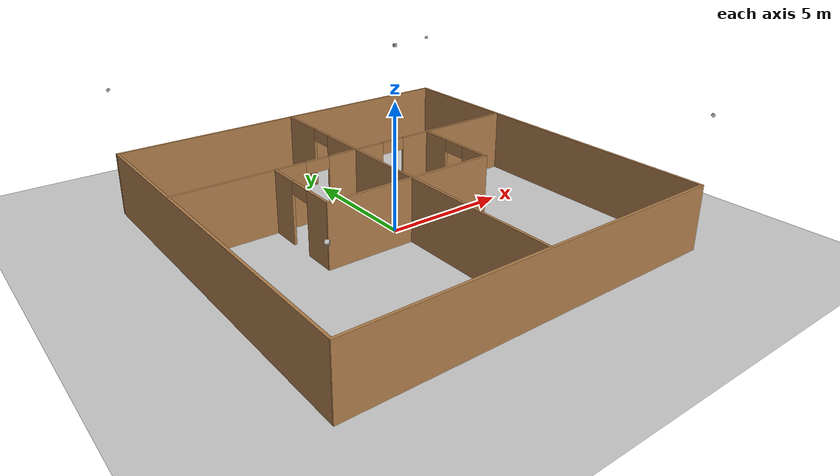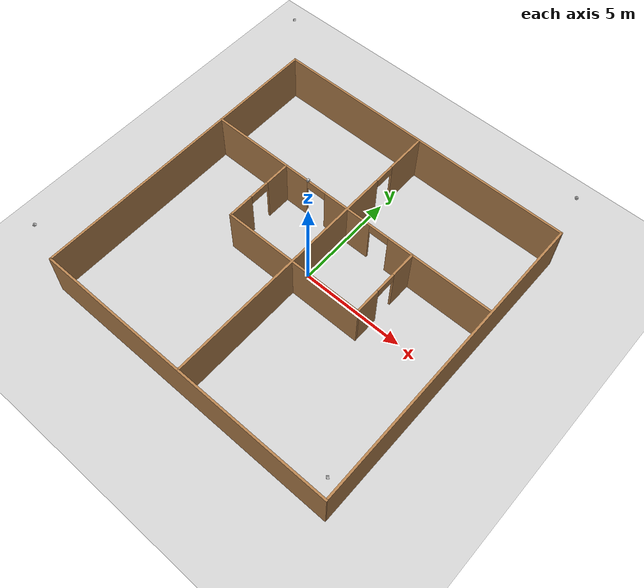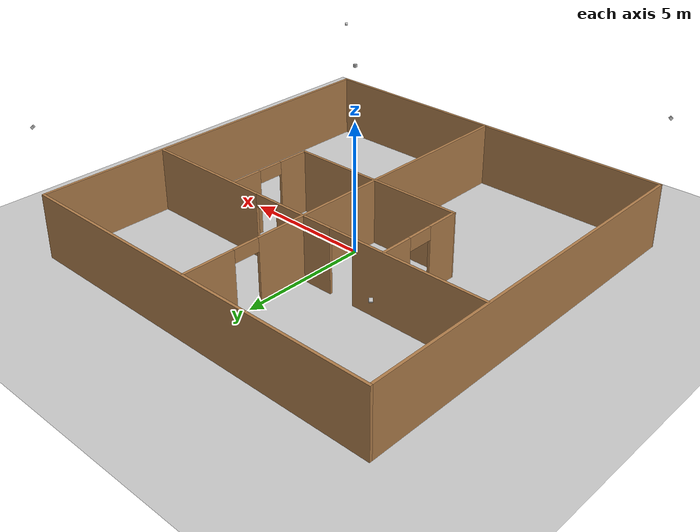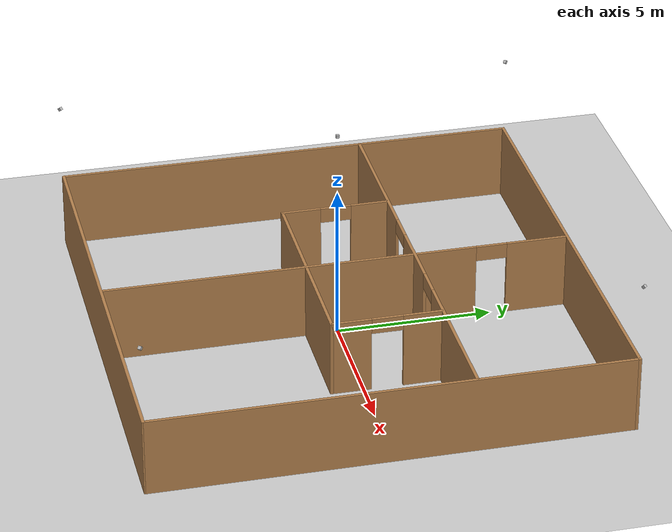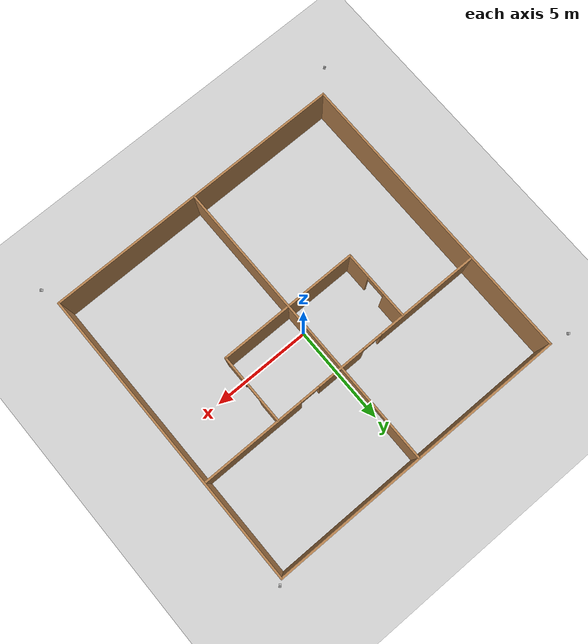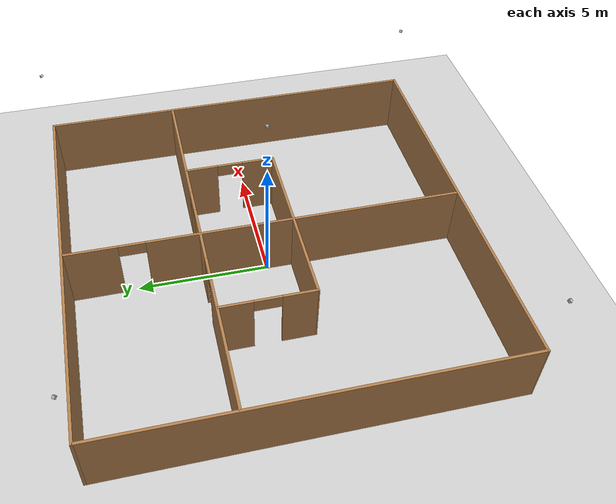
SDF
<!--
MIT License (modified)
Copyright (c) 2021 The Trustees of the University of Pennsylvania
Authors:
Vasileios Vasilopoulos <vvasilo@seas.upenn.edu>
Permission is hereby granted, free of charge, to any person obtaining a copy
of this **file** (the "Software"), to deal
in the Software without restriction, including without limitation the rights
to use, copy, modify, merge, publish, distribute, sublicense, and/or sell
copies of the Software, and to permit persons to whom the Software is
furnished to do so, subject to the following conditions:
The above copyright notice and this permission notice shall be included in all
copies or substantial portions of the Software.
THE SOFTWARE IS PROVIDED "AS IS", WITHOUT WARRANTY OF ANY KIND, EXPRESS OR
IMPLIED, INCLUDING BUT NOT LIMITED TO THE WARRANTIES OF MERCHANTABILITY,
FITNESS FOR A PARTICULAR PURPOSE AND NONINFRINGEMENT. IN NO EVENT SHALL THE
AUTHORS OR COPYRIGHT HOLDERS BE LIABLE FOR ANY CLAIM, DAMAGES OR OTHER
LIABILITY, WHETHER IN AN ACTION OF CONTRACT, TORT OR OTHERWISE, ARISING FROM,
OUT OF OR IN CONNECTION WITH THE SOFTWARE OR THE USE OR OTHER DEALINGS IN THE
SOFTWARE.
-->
<sdf version="1.6">
 <world name="default">
  <light name="sun" type="directional">
   <pose>0 0 10 0 -0 0</pose>
   <diffuse>0.8 0.8 0.8 1</diffuse>
   <specular>0.1 0.1 0.1 1</specular>
   <attenuation>
    <range>1000</range>
    <constant>0.9</constant>
    <linear>0.01</linear>
    <quadratic>0.001</quadratic>
   </attenuation>
   <direction>-0.5 0.5 -1</direction>
  </light>
  <model name="ground_plane">
   <static>1</static>
   <link name="link">
    <collision name="collision">
     <geometry><plane><normal>0 0 1</normal><size>100 100</size></plane></geometry>
     <surface><friction><ode><mu>100</mu><mu2>50</mu2></ode></friction></surface>
    </collision>
    <visual name="visual">
     <cast_shadows>0</cast_shadows>
     <geometry><plane><normal>0 0 1</normal><size>100 100</size></plane></geometry>
     <material>
      <script><uri>file://media/materials/scripts/gazebo.material</uri><name>Gazebo/Grey</name></script>
     </material>
    </visual>
   </link>
  </model>
  <gravity>0 0 -9.81</gravity>
  <magnetic_field>6e-06 2.3e-05 -4.2e-05</magnetic_field>
  <atmosphere type="adiabatic"/>
  <physics name="default_physics" default="0" type="ode">
   <max_step_size>0.0001</max_step_size>
   <real_time_factor>1</real_time_factor>
   <real_time_update_rate>10000</real_time_update_rate>
  </physics>
  <scene><ambient>0.4 0.4 0.4 1</ambient><background>0.7 0.7 0.7 1</background><shadows>1</shadows></scene>
  <spherical_coordinates>
   <surface_model>EARTH_WGS84</surface_model>
   <latitude_deg>0</latitude_deg>
   <longitude_deg>0</longitude_deg>
   <elevation>0</elevation>
   <heading_deg>0</heading_deg>
  </spherical_coordinates>
  <model name="building">
   <link name="Wall_0">
    <collision name="Wall_0_Collision">
     <geometry><box><size>15.1 0.1 2.5</size></box></geometry>
     <pose>0 0 1.25 0 -0 0</pose>
    </collision>
    <visual name="Wall_0_Visual">
     <pose>0 0 1.25 0 -0 0</pose>
     <geometry><box><size>15.1 0.1 2.5</size></box></geometry>
     <material>
      <script><uri>file://media/materials/scripts/gazebo.material</uri><name>Gazebo/Wood</name></script>
      <ambient>1 1 1 1</ambient>
     </material>
     <meta><layer>0</layer></meta>
    </visual>
    <pose>0 -7.5 0 0 -0 0</pose>
   </link>
   <link name="Wall_1">
    <collision name="Wall_1_Collision">
     <geometry><box><size>15 0.1 2.5</size></box></geometry>
     <pose>0 0 1.25 0 -0 0</pose>
    </collision>
    <visual name="Wall_1_Visual">
     <pose>0 0 1.25 0 -0 0</pose>
     <geometry><box><size>15 0.1 2.5</size></box></geometry>
     <material>
      <script><uri>file://media/materials/scripts/gazebo.material</uri><name>Gazebo/Wood</name></script>
      <ambient>1 1 1 1</ambient>
     </material>
     <meta><layer>0</layer></meta>
    </visual>
    <pose>7.5 0 0 0 -0 1.5708</pose>
   </link>
   <link name="Wall_10">
    <collision name="Wall_10_Collision">
     <geometry><box><size>7.1 0.1 2.5</size></box></geometry>
     <pose>0 0 1.25 0 -0 0</pose>
    </collision>
    <visual name="Wall_10_Visual">
     <pose>0 0 1.25 0 -0 0</pose>
     <geometry><box><size>7.1 0.1 2.5</size></box></geometry>
     <material>
      <script><uri>file://media/materials/scripts/gazebo.material</uri><name>Gazebo/Wood</name></script>
      <ambient>1 1 1 1</ambient>
     </material>
     <meta><layer>0</layer></meta>
    </visual>
    <pose>0 -1 0 0 -0 0</pose>
   </link>
   <link name="Wall_15a">
    <collision name="Wall_15a_Collision">
     <geometry><box><size>1.25 0.1 2.5</size></box></geometry>
     <pose>0 0 1.25 0 -0 0</pose>
    </collision>
    <visual name="Wall_15a_Visual">
     <pose>0 0 1.25 0 -0 0</pose>
     <geometry><box><size>1.25 0.1 2.5</size></box></geometry>
     <material>
      <script><uri>file://media/materials/scripts/gazebo.material</uri><name>Gazebo/Wood</name></script>
      <ambient>1 1 1 1</ambient>
     </material>
     <meta><layer>0</layer></meta>
    </visual>
    <pose>3.5 1.875 0 0 -0 -1.5708</pose>
   </link>
   <link name="Wall_15b">
    <collision name="Wall_15b_Collision">
     <geometry><box><size>1.25 0.1 2.5</size></box></geometry>
     <pose>0 0 1.25 0 -0 0</pose>
    </collision>
    <visual name="Wall_15b_Visual">
     <pose>0 0 1.25 0 -0 0</pose>
     <geometry><box><size>1.25 0.1 2.5</size></box></geometry>
     <material>
      <script><uri>file://media/materials/scripts/gazebo.material</uri><name>Gazebo/Wood</name></script>
      <ambient>1 1 1 1</ambient>
     </material>
     <meta><layer>0</layer></meta>
    </visual>
    <pose>3.5 -0.375 0 0 -0 -1.5708</pose>
   </link>
   <link name="Wall_15c">
    <collision name="Wall_15c_Collision">
     <geometry><box><size>1.0 0.1 0.5</size></box></geometry>
     <pose>0 0 2.25 0 -0 0</pose>
    </collision>
    <visual name="Wall_15c_Visual">
     <pose>0 0 2.25 0 -0 0</pose>
     <geometry><box><size>1.0 0.1 0.5</size></box></geometry>
     <material>
      <script><uri>file://media/materials/scripts/gazebo.material</uri><name>Gazebo/Wood</name></script>
      <ambient>1 1 1 1</ambient>
     </material>
     <meta><layer>0</layer></meta>
    </visual>
    <pose>3.5 0.75 0 0 -0 -1.5708</pose>
   </link>
   <link name="Wall_17a">
    <collision name="Wall_17a_Collision">
     <geometry><box><size>5.25 0.1 2.5</size></box></geometry>
     <pose>0 0 1.25 0 -0 0</pose>
    </collision>
    <visual name="Wall_17a_Visual">
     <pose>0 0 1.25 0 -0 0</pose>
     <geometry><box><size>5.25 0.1 2.5</size></box></geometry>
     <material>
      <script><uri>file://media/materials/scripts/gazebo.material</uri><name>Gazebo/Wood</name></script>
      <ambient>1 1 1 1</ambient>
     </material>
     <meta><layer>0</layer></meta>
    </visual>
    <pose>-4.875 2.5 0 0 -0 0</pose>
   </link>
   <link name="Wall_17b">
    <collision name="Wall_17b_Collision">
     <geometry><box><size>5.25 0.1 2.5</size></box></geometry>
     <pose>0 0 1.25 0 -0 0</pose>
    </collision>
    <visual name="Wall_17b_Visual">
     <pose>0 0 1.25 0 -0 0</pose>
     <geometry><box><size>5.25 0.1 2.5</size></box></geometry>
     <material>
      <script><uri>file://media/materials/scripts/gazebo.material</uri><name>Gazebo/Wood</name></script>
      <ambient>1 1 1 1</ambient>
     </material>
     <meta><layer>0</layer></meta>
    </visual>
    <pose>4.875 2.5 0 0 -0 0</pose>
   </link>
   <link name="Wall_17c">
    <collision name="Wall_17c_Collision">
     <geometry><box><size>2.5 0.1 2.5</size></box></geometry>
     <pose>0 0 1.25 0 -0 0</pose>
    </collision>
    <visual name="Wall_17c_Visual">
     <pose>0 0 1.25 0 -0 0</pose>
     <geometry><box><size>2.5 0.1 2.5</size></box></geometry>
     <material>
      <script><uri>file://media/materials/scripts/gazebo.material</uri><name>Gazebo/Wood</name></script>
      <ambient>1 1 1 1</ambient>
     </material>
     <meta><layer>0</layer></meta>
    </visual>
    <pose>0 2.5 0 0 -0 0</pose>
   </link>
   <link name="Wall_17d">
    <collision name="Wall_17d_Collision">
     <geometry><box><size>1 0.1 0.5</size></box></geometry>
     <pose>0 0 2.25 0 -0 0</pose>
    </collision>
    <visual name="Wall_17d_Visual">
     <pose>0 0 2.25 0 -0 0</pose>
     <geometry><box><size>1 0.1 0.5</size></box></geometry>
     <material>
      <script><uri>file://media/materials/scripts/gazebo.material</uri><name>Gazebo/Wood</name></script>
      <ambient>1 1 1 1</ambient>
     </material>
     <meta><layer>0</layer></meta>
    </visual>
    <pose>-1.75 2.5 0 0 -0 0</pose>
   </link>
   <link name="Wall_17e">
    <collision name="Wall_17e_Collision">
     <geometry><box><size>1 0.1 0.5</size></box></geometry>
     <pose>0 0 2.25 0 -0 0</pose>
    </collision>
    <visual name="Wall_17e_Visual">
     <pose>0 0 2.25 0 -0 0</pose>
     <geometry><box><size>1 0.1 0.5</size></box></geometry>
     <material>
      <script><uri>file://media/materials/scripts/gazebo.material</uri><name>Gazebo/Wood</name></script>
      <ambient>1 1 1 1</ambient>
     </material>
     <meta><layer>0</layer></meta>
    </visual>
    <pose>1.75 2.5 0 0 -0 0</pose>
   </link>
   <link name="Wall_2">
    <collision name="Wall_2_Collision">
     <geometry><box><size>15.1 0.1 2.5</size></box></geometry>
     <pose>0 0 1.25 0 -0 0</pose>
    </collision>
    <visual name="Wall_2_Visual">
     <pose>0 0 1.25 0 -0 0</pose>
     <geometry><box><size>15.1 0.1 2.5</size></box></geometry>
     <material>
      <script><uri>file://media/materials/scripts/gazebo.material</uri><name>Gazebo/Wood</name></script>
      <ambient>1 1 1 1</ambient>
     </material>
     <meta><layer>0</layer></meta>
    </visual>
    <pose>0 7.5 0 0 -0 3.14159</pose>
   </link>
   <link name="Wall_3">
    <collision name="Wall_3_Collision">
     <geometry><box><size>15 0.1 2.5</size></box></geometry>
     <pose>0 0 1.25 0 -0 0</pose>
    </collision>
    <visual name="Wall_3_Visual">
     <pose>0 0 1.25 0 -0 0</pose>
     <geometry><box><size>15 0.1 2.5</size></box></geometry>
     <material>
      <script><uri>file://media/materials/scripts/gazebo.material</uri><name>Gazebo/Wood</name></script>
      <ambient>1 1 1 1</ambient>
     </material>
     <meta><layer>0</layer></meta>
    </visual>
    <pose>-7.5 0 0 0 -0 -1.5708</pose>
   </link>
   <link name="Wall_5a">
    <collision name="Wall_5a_Collision">
     <geometry><box><size>12 0.1 2.5</size></box></geometry>
     <pose>0 0 1.25 0 -0 0</pose>
    </collision>
    <visual name="Wall_5a_Visual">
     <pose>0 0 1.25 0 -0 0</pose>
     <geometry><box><size>12 0.1 2.5</size></box></geometry>
     <material>
      <script><uri>file://media/materials/scripts/gazebo.material</uri><name>Gazebo/Wood</name></script>
      <ambient>1 1 1 1</ambient>
     </material>
     <meta><layer>0</layer></meta>
    </visual>
    <pose>-0 -1.5 0 0 -0 -1.5708</pose>
   </link>
   <link name="Wall_5b">
    <collision name="Wall_5b_Collision">
     <geometry><box><size>2 0.1 2.5</size></box></geometry>
     <pose>0 0 1.25 0 -0 0</pose>
    </collision>
    <visual name="Wall_5b_Visual">
     <pose>0 0 1.25 0 -0 0</pose>
     <geometry><box><size>2 0.1 2.5</size></box></geometry>
     <material>
      <script><uri>file://media/materials/scripts/gazebo.material</uri><name>Gazebo/Wood</name></script>
      <ambient>1 1 1 1</ambient>
     </material>
     <meta><layer>0</layer></meta>
    </visual>
    <pose>-0 6.5 0 0 -0 -1.5708</pose>
   </link>
   <link name="Wall_5c">
    <collision name="Wall_5c_Collision">
     <geometry><box><size>1 0.1 0.5</size></box></geometry>
     <pose>0 0 2.25 0 -0 0</pose>
    </collision>
    <visual name="Wall_5c_Visual">
     <pose>0 0 2.25 0 -0 0</pose>
     <geometry><box><size>1 0.1 0.5</size></box></geometry>
     <material>
      <script><uri>file://media/materials/scripts/gazebo.material</uri><name>Gazebo/Wood</name></script>
      <ambient>1 1 1 1</ambient>
     </material>
     <meta><layer>0</layer></meta>
    </visual>
    <pose>-0 5.0 0 0 -0 -1.5708</pose>
   </link>
   <link name="Wall_9a">
    <collision name="Wall_9a_Collision">
     <geometry><box><size>1.25 0.1 2.5</size></box></geometry>
     <pose>0 0 1.25 0 -0 0</pose>
    </collision>
    <visual name="Wall_9a_Visual">
     <pose>0 0 1.25 0 -0 0</pose>
     <geometry><box><size>1.25 0.1 2.5</size></box></geometry>
     <material>
      <script><uri>file://media/materials/scripts/gazebo.material</uri><name>Gazebo/Wood</name></script>
      <ambient>1 1 1 1</ambient>
     </material>
     <meta><layer>0</layer></meta>
    </visual>
    <pose>-3.5 1.875 0 0 -0 -1.5708</pose>
   </link>
   <link name="Wall_9b">
    <collision name="Wall_9b_Collision">
     <geometry><box><size>1.25 0.1 2.5</size></box></geometry>
     <pose>0 0 1.25 0 -0 0</pose>
    </collision>
    <visual name="Wall_9b_Visual">
     <pose>0 0 1.25 0 -0 0</pose>
     <geometry><box><size>1.25 0.1 2.5</size></box></geometry>
     <material>
      <script><uri>file://media/materials/scripts/gazebo.material</uri><name>Gazebo/Wood</name></script>
      <ambient>1 1 1 1</ambient>
     </material>
     <meta><layer>0</layer></meta>
    </visual>
    <pose>-3.5 -0.375 0 0 -0 -1.5708</pose>
   </link>
   <link name="Wall_9c">
    <collision name="Wall_9c_Collision">
     <geometry><box><size>1.0 0.1 0.5</size></box></geometry>
     <pose>0 0 2.25 0 -0 0</pose>
    </collision>
    <visual name="Wall_9c_Visual">
     <pose>0 0 2.25 0 -0 0</pose>
     <geometry><box><size>1.0 0.1 0.5</size></box></geometry>
     <material>
      <script><uri>file://media/materials/scripts/gazebo.material</uri><name>Gazebo/Wood</name></script>
      <ambient>1 1 1 1</ambient>
     </material>
     <meta><layer>0</layer></meta>
    </visual>
    <pose>-3.5 0.75 0 0 -0 -1.5708</pose>
   </link>
   <static>1</static>
  </model>
  <model name="camera1">
   <static>true</static>
   <pose>-7.5 -7.5 5 0 0.86 0.72</pose>
   <link name="link">
    <visual name="visual">
     <cast_shadows>0</cast_shadows>
     <geometry><box><size>0.1 0.1 0.1</size></box></geometry>
    </visual>
    <sensor name="my_camera" type="camera">
     <camera>
      <save enabled="true"><path>/home/kodlab/gazebo_camera_1</path></save>
      <horizontal_fov>1.5</horizontal_fov>
      <image><width>1920</width><height>1080</height></image>
      <clip><near>0.1</near><far>100</far></clip>
     </camera>
     <always_on>1</always_on>
     <update_rate>30</update_rate>
    </sensor>
   </link>
  </model>
  <model name="camera2">
   <static>true</static>
   <pose>7.5 -7.5 5 0 0.86 2.42</pose>
   <link name="link">
    <visual name="visual">
     <cast_shadows>0</cast_shadows>
     <geometry><box><size>0.1 0.1 0.1</size></box></geometry>
    </visual>
    <sensor name="my_camera" type="camera">
     <camera>
      <save enabled="true"><path>/home/kodlab/gazebo_camera_2</path></save>
      <horizontal_fov>1.5</horizontal_fov>
      <image><width>1920</width><height>1080</height></image>
      <clip><near>0.1</near><far>100</far></clip>
     </camera>
     <always_on>1</always_on>
     <update_rate>30</update_rate>
    </sensor>
   </link>
  </model>
  <model name="camera3">
   <static>true</static>
   <pose>7.5 7.5 5 0 0.86 -2.42</pose>
   <link name="link">
    <visual name="visual">
     <cast_shadows>0</cast_shadows>
     <geometry><box><size>0.1 0.1 0.1</size></box></geometry>
    </visual>
    <sensor name="my_camera" type="camera">
     <camera>
      <save enabled="true"><path>/home/kodlab/gazebo_camera_3</path></save>
      <horizontal_fov>1.5</horizontal_fov>
      <image><width>1920</width><height>1080</height></image>
      <clip><near>0.1</near><far>100</far></clip>
     </camera>
     <always_on>1</always_on>
     <update_rate>30</update_rate>
    </sensor>
   </link>
  </model>
  <model name="camera4">
   <static>true</static>
   <pose>-7.5 7.5 5 0 0.86 -0.72</pose>
   <link name="link">
    <visual name="visual">
     <cast_shadows>0</cast_shadows>
     <geometry><box><size>0.1 0.1 0.1</size></box></geometry>
    </visual>
    <sensor name="my_camera" type="camera">
     <camera>
      <save enabled="true"><path>/home/kodlab/gazebo_camera_4</path></save>
      <horizontal_fov>1.5</horizontal_fov>
      <image><width>1920</width><height>1080</height></image>
      <clip><near>0.1</near><far>100</far></clip>
     </camera>
     <always_on>1</always_on>
     <update_rate>30</update_rate>
    </sensor>
   </link>
  </model>
  <model name="camera5">
   <static>true</static>
   <pose>0 0 7 0 1.57 0</pose>
   <link name="link">
    <visual name="visual">
     <cast_shadows>0</cast_shadows>
     <geometry><box><size>0.1 0.1 0.1</size></box></geometry>
    </visual>
    <sensor name="my_camera" type="camera">
     <camera>
      <save enabled="true"><path>/home/kodlab/gazebo_camera_5</path></save>
      <horizontal_fov>1.7</horizontal_fov>
      <image><width>1920</width><height>1920</height></image>
      <clip><near>0.1</near><far>100</far></clip>
     </camera>
     <always_on>1</always_on>
     <update_rate>30</update_rate>
    </sensor>
   </link>
  </model>
 </world>
</sdf>
